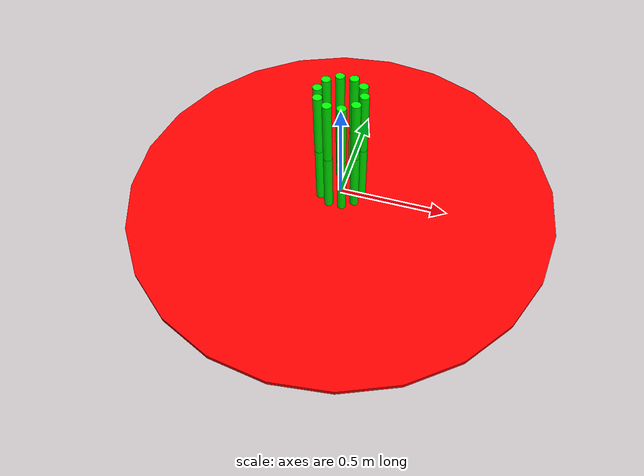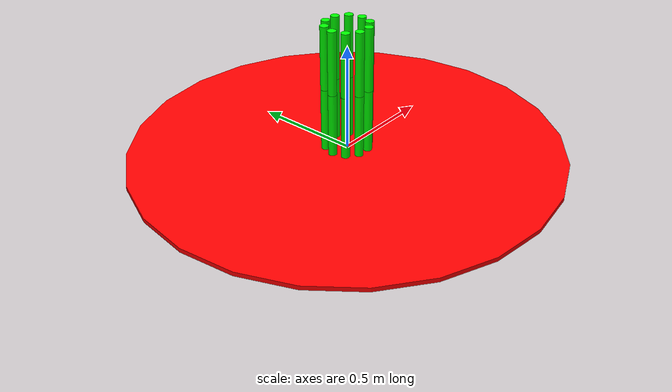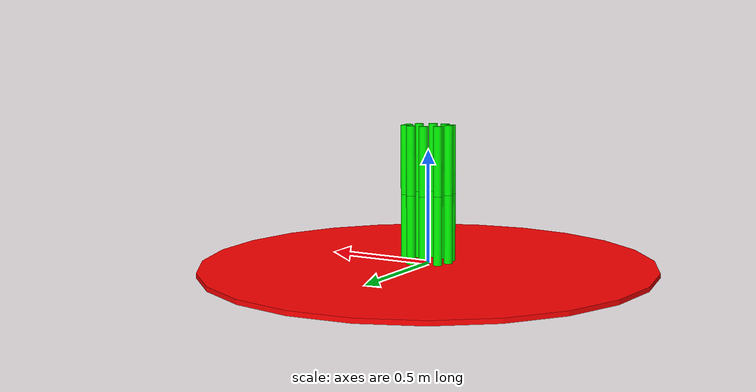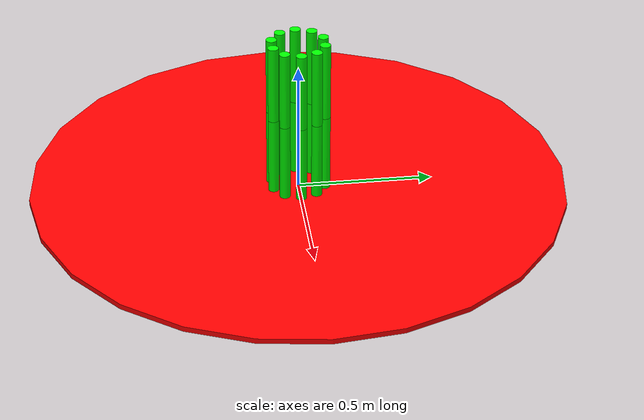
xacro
<?xml version="1.0"?>
<robot xmlns:xacro="http://www.ros.org/wiki/xacro" name="test_bot">

	<xacro:property name = "main_body_radius" value = "1"/>
	<xacro:property name = "main_body_length" value = "0.02"/>
	<xacro:property name = "wheel_radius" value = "0.02"/>
	<xacro:property name = "wheel_length" value = "0.3"/>

	<xacro:property name = "pie" value = "3.14159265359"/>
	<xacro:property name = "deg_to_rad" value = "${pie/180.}"/>

	 <xacro:macro name="inertial_matrix" params="mass">
			<inertial>
				<mass value="${mass}" />
				<inertia ixx="1.0" ixy="0.0" ixz="0.0" iyy="0.5" iyz="0.0" izz="1.0" />
			</inertial>
	</xacro:macro>

	<xacro:macro name = "straw" params="name radius length offsetr">
		<link name = "${name}">
			<visual>
				<geometry>
					<cylinder length = "${length}" radius = "${radius}"/>
				</geometry>
				<origin rpy = "0 0 0" xyz = "0 0 ${length/2.}"/>
				<material name = "green">
					<color rgba = "0 1 0 1"/>
				</material>
			</visual>
			<collision>
				<geometry>
					<cylinder length = "${length}" radius = "${radius}"/>
				</geometry>
				<origin rpy = "0 0 0" xyz = "0 0 ${length/2.}"/>
			</collision>
			<xacro:inertial_matrix mass = "1"/>
		</link>
	</xacro:macro>

	<link name = "base_link">
		<visual>
			<geometry>
				<cylinder length = "${main_body_length}" radius = "${main_body_radius}"/>
			</geometry>
			<origin rpy = "0 0 0"/>
			<material name = "red">
				<color rgba = "1 0 0 1"/>
			</material>
		</visual>
		<xacro:inertial_matrix mass = "1"/>
	</link>

	<xacro:macro name = "master_finger" params="name radius length offsetr theta">
		<xacro:straw name = "${name + '_bot_straw'}" length = "${length}" radius = "${radius}" offsetr="${offsetr}"/>
		<xacro:straw name = "${name + '_top_straw'}" length = "${length}" radius = "${radius}" offsetr="${offsetr}"/>

		<joint name="${name + '_main_joint'}" type="revolute">
		    <parent link="base_link"/>
		    <child link="${name + '_bot_straw'}"/>
		    <origin xyz="${cos(theta)*offsetr} ${sin(theta)*offsetr} ${main_body_length/2}"/>
		    <axis xyz="${sin(theta)*offsetr} ${-cos(theta)*offsetr} 0" />
		    <limit effort="300" velocity="0.1" lower="${-pie/2}" upper="0"/>
		    <dynamics damping="50" friction="1"/>
		</joint>

		<joint name="${name + '_slave_joint'}" type="revolute">
		    <parent link="${name + '_bot_straw'}"/>
		    <child link="${name + '_top_straw'}"/>
		    <origin xyz="0 0 ${length}"/>
		    <axis xyz="${sin(theta)*offsetr} ${-cos(theta)*offsetr} 0" />
		    <limit effort="300" velocity="0.1" lower="${-pie}" upper="${pie}"/>
		    <mimic joint="${name + '_main_joint'}" multiplier="-2.0" offset="0.0"/>
		    <dynamics damping="50" friction="1"/>
		</joint>

	</xacro:macro>

	<xacro:macro name = "slave_finger" params="name master radius length offsetr theta">
		<xacro:straw name = "${name + '_bot_straw'}" length = "${length}" radius = "${radius}" offsetr="${offsetr}"/>
		<xacro:straw name = "${name + '_top_straw'}" length = "${length}" radius = "${radius}" offsetr="${offsetr}"/>

		<joint name="${name + '_main_joint'}" type="revolute">
		    <parent link="base_link"/>
		    <child link="${name + '_bot_straw'}"/>
		    <origin xyz="${cos(theta)*offsetr} ${sin(theta)*offsetr} ${main_body_length/2}"/>
		    <axis xyz="${sin(theta)*offsetr} ${-cos(theta)*offsetr} 0" />
		    <limit effort="300" velocity="0.1" lower="${-pie/2}" upper="0"/>
		    <mimic joint="${master}" multiplier="1.0" offset="0.0"/>
		    <dynamics damping="50" friction="1"/>
		</joint>

		<joint name="${name + '_slave_joint'}" type="revolute">
		    <parent link="${name + '_bot_straw'}"/>
		    <child link="${name + '_top_straw'}"/>
		    <origin xyz="0 0 ${length}"/>
		    <axis xyz="${sin(theta)*offsetr} ${-cos(theta)*offsetr} 0" />
		    <limit effort="300" velocity="0.1" lower="${-pie}" upper="${pie}"/>
		    <mimic joint="${name + '_main_joint'}" multiplier="-2.0" offset="0.0"/>
		    <dynamics damping="50" friction="1"/>
		</joint>
	</xacro:macro>

	<xacro:macro name = "slave_fingers" params="counter counter_max master radius length offsetr">
		<xacro:if value="${counter != counter_max }">
			<xacro:slave_finger name = "${'_no_'+ str(counter)}" master = "${master}" radius = "${radius}" length = "${length}" offsetr = "${offsetr}" theta = "${2*pie*counter/counter_max}"/>
			<xacro:slave_fingers counter = "${counter+1}" counter_max="${counter_max}" master="${master}" radius="${radius}" length="${length}" offsetr="${offsetr}"/>
		</xacro:if>
	</xacro:macro>

	<xacro:master_finger name = "master" radius = "${wheel_radius}" length = "${wheel_length}" offsetr = "0.1" theta="0"/>
	<xacro:slave_fingers counter="1" counter_max = "10" master = "master_main_joint" radius = "${wheel_radius}" length = "${wheel_length}" offsetr = "0.1"/>

</robot>
